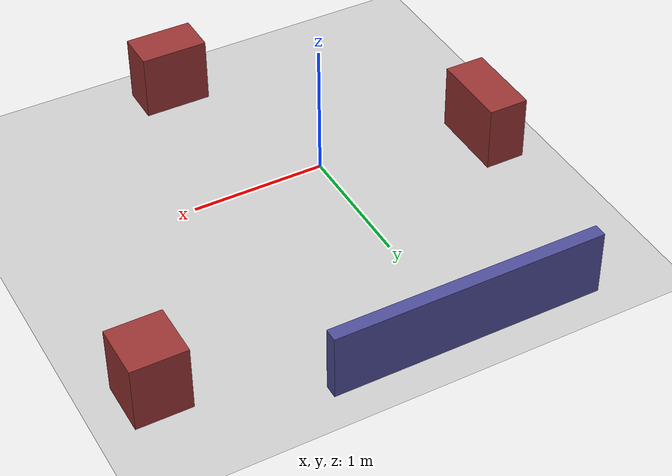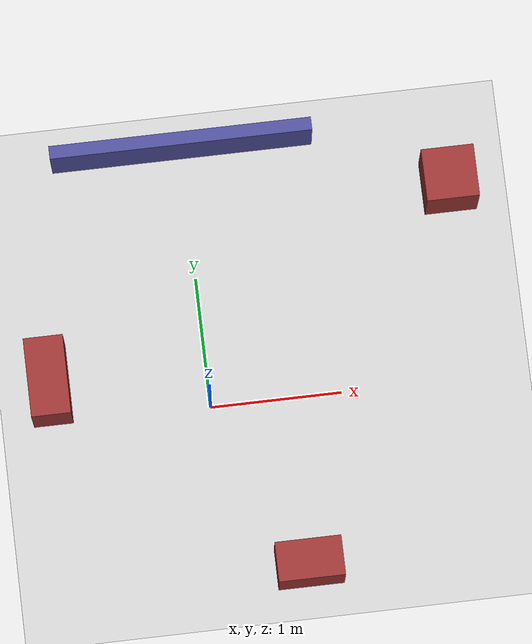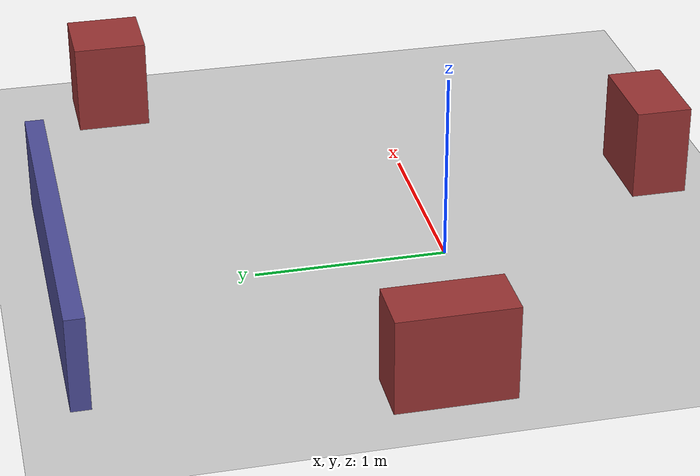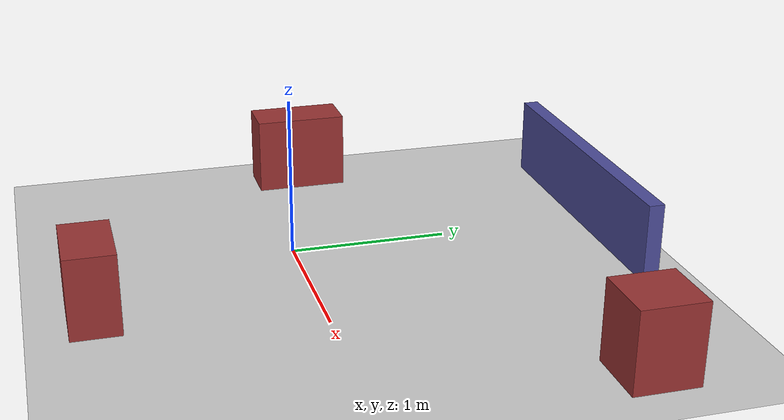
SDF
<?xml version="1.0" ?>
<sdf version="1.6">
  <world name="default">
    <plugin name="gazebo_ros_state" filename="libgazebo_ros_state.so"/>

    <include>
      <uri>model://ground_plane</uri>
    </include>

    <include>
      <uri>model://sun</uri>
    </include>

    <physics type="ode">
      <real_time_update_rate>1000.0</real_time_update_rate>
      <max_step_size>0.001</max_step_size>
      <real_time_factor>1</real_time_factor>
      <ode>
        <solver>
          <type>quick</type>
          <iters>150</iters>
          <precon_iters>0</precon_iters>
          <sor>1.400000</sor>
          <use_dynamic_moi_rescaling>1</use_dynamic_moi_rescaling>
        </solver>
        <constraints>
          <cfm>0.00001</cfm>
          <erp>0.2</erp>
          <contact_max_correcting_vel>2000.000000</contact_max_correcting_vel>
          <contact_surface_layer>0.01000</contact_surface_layer>
        </constraints>
      </ode>
    </physics>

    <model name="u_obs1">
      <static>true</static>
      <pose>0.6 -1.3 0.25 0 0 0</pose>
      <link name="link">
        <collision name="collision">
          <geometry><box><size>0.5 0.3 0.5</size></box></geometry>
        </collision>
        <visual name="visual">
          <geometry><box><size>0.5 0.3 0.5</size></box></geometry>
          <material><ambient>0.6 0.2 0.2 1</ambient></material>
        </visual>
      </link>
    </model>
    <model name="u_obs2">
      <static>true</static>
      <pose>-1.2 0.3 0.25 0 0 0</pose>
      <link name="link">
        <collision name="collision">
          <geometry><box><size>0.3 0.6 0.5</size></box></geometry>
        </collision>
        <visual name="visual">
          <geometry><box><size>0.3 0.6 0.5</size></box></geometry>
          <material><ambient>0.6 0.2 0.2 1</ambient></material>
        </visual>
      </link>
    </model>
    <model name="u_obs3">
      <static>true</static>
      <pose>2.0 1.5 0.25 0 0 0</pose>
      <link name="link">
        <collision name="collision">
          <geometry><box><size>0.4 0.4 0.5</size></box></geometry>
        </collision>
        <visual name="visual">
          <geometry><box><size>0.4 0.4 0.5</size></box></geometry>
          <material><ambient>0.6 0.2 0.2 1</ambient></material>
        </visual>
      </link>
    </model>
    <model name="u_wall1">
      <static>true</static>
      <pose>0.0 2.0 0.25 0 0 0.0</pose>
      <link name="link">
        <collision name="collision">
          <geometry><box><size>2.0 0.1 0.5</size></box></geometry>
        </collision>
        <visual name="visual">
          <geometry><box><size>2.0 0.1 0.5</size></box></geometry>
          <material><ambient>0.3 0.3 0.6 1</ambient></material>
        </visual>
      </link>
    </model>

  </world>
</sdf>
